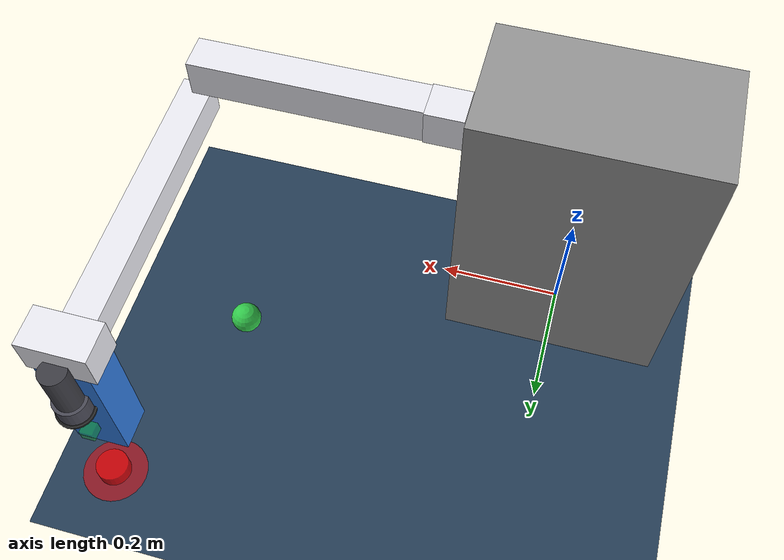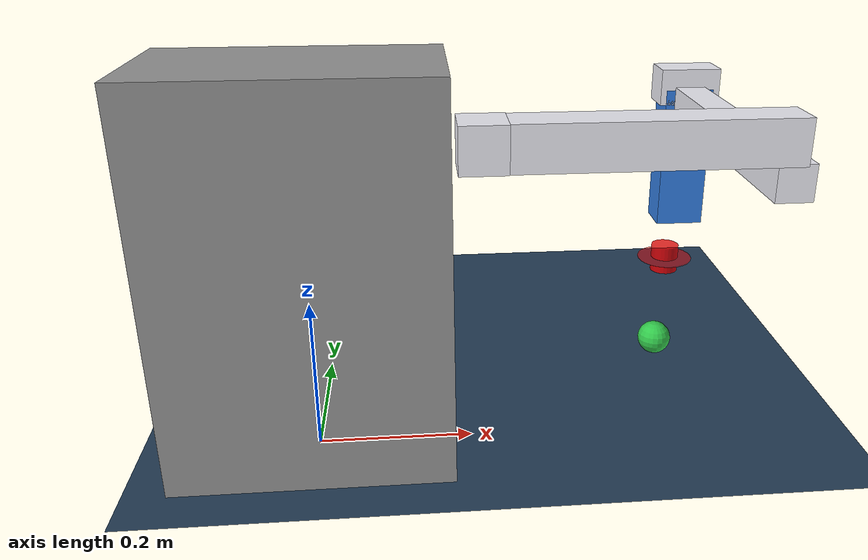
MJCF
<mujoco model="pick_and_place_mocap">
    <compiler angle="radian" autolimits="true" />

    <option integrator="Euler" noslip_iterations="3" timestep="0.002" cone="pyramidal">
        <flag multiccd="enable" warmstart="enable" />
    </option>

    <include file="single_side_arm_mocap.xml" />

    <statistic center="0.3 0 0.4" extent="1.5" />

    <visual>
        <headlight diffuse="0.6 0.6 0.6" ambient="0.3 0.3 0.3" specular="0 0 0" />
        <rgba haze="0.15 0.25 0.35 1" />
        <global azimuth="120" elevation="-20" />
    </visual>

    <asset>
        <texture type="skybox" builtin="gradient" rgb1="0.3 0.5 0.7" rgb2="0 0 0" width="512"
            height="3072" />
        <texture type="2d" name="groundplane" builtin="checker" mark="edge" rgb1="0.2 0.3 0.4"
            rgb2="0.1 0.2 0.3" markrgb="0.8 0.8 0.8" width="300" height="300" />
        <material name="groundplane" texture="groundplane" texuniform="true" texrepeat="5 5"
            reflectance="0.2" />
    </asset>

    <worldbody>
        <light pos="0 0 1.5" dir="0 0 -1" directional="true" />
        <camera name="watching" pos="1.2 -1.0 1.2" xyaxes="0.644 0.765 0.000 -0.250 0.210 0.945" />
        <camera name="front_view" pos="0.8 0 0.6" xyaxes="0 1 0 0 0 1" />
        <camera name="side_view" pos="0 -1.0 0.6" xyaxes="1 0 0 0 0 1" />

        <geom name="floor" pos="0 0 0" size="0 0 0.05" type="plane" material="groundplane" />

        <!-- Target zone -->
        <body name="target_zone" pos="0.6032 0.5114 0.025">
            <site name="target" pos="0 0 0" size="0.025 0.025 0.001" rgba="1 0 0 0.8"
                type="cylinder" />
            <geom name="target_platform" type="cylinder" size="0.05 0.001" pos="0 0 0"
                rgba="1 0 0 0.5" contype="0" conaffinity="0" />
        </body>

        <!-- Object to pick -->
        <body name="obj" pos="0.5 0.2 0.025">
            <joint type="free" damping="0.5" name="obj_joint" />
            <geom name="obj_geom" mass="0.08" type="sphere" size="0.025" rgba="0.2 0.8 0.3 1"
                friction="2.0 0.8 0.01" condim="6" solref="0.01 1.0" solimp="0.95 0.99 0.001" />
            <site name="obj_site" pos="0 0 0" size="0.015" type="sphere" rgba="1 1 0 0.5" />
        </body>

    </worldbody>

    <!-- Additional sensors for pick and place task -->
    <sensor>
        <!-- Object position and orientation -->
        <framepos name="object_pos" objtype="site" objname="obj_site" />
        <framequat name="object_quat" objtype="site" objname="obj_site" />

        <!-- Target position -->
        <framepos name="target_position" objtype="site" objname="target" />

        <!-- Distance between end effector and object -->
        <subtreecom name="object_com" body="obj" />
    </sensor>

    <!-- Equality constraints for suction gripper -->
    <equality>
        <weld name="suction_weld" body1="suction_cup" body2="obj" solref="0.02 1"
            solimp="0.9 0.95 0.001" active="false" />
    </equality>

</mujoco>

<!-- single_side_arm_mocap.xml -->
<mujoco model="single_side_arm_mocap">
    <compiler angle="radian" autolimits="true" />

    <option timestep="0.002" integrator="RK4" />

    <default>
        <joint damping="0.5" armature="0.1" />
        <geom contype="1" conaffinity="1" friction="1 0.5 0.005" />
    </default>

    <asset>
        <material name="white" rgba="0.95 0.95 0.98 1" />
        <material name="gray" rgba="0.6 0.6 0.6 1" />
        <material name="dark" rgba="0.25 0.25 0.28 1" />
        <material name="blue" rgba="0.2 0.5 0.9 1" />
        <material name="rubber" rgba="0.1 0.1 0.1 0.9" />
    </asset>

    <worldbody>
        <!-- Base/Trunk (fixed) -->
        <body name="trunk" pos="0 0 0">
            <geom name="trunk_geom" size="0.175 0.1 0.25" pos="0 0 0.25" type="box" material="gray" />
            <geom name="stub_geom" size="0.03 0.03 0.03" pos="0.215 0 0.4" type="box"
                material="white" />

            <!-- Link 1 (rotates around Z-axis) -->
            <body name="link1_x" pos="0.245 0 0.4">
                <inertial pos="0.1791 0 0" mass="1.2" diaginertia="0.0131907 0.0131332 0.0006625" />
                <joint name="joint1" type="hinge" pos="0 0 0" axis="0 0 1" range="-1.5708 1.5708"
                    damping="1.0" />
                <geom name="link1_geom" size="0.1791 0.0275 0.03" pos="0.1791 0 0" type="box"
                    material="white" />

                <!-- Link 2 (rotates around Z-axis) -->
                <body name="link2_y" pos="0.3582 0 -0.06">
                    <inertial pos="0 0.2357 0" mass="1.5"
                        diaginertia="0.028089745 0.028089745 0.000625" />
                    <joint name="joint2" type="hinge" pos="0 0 0" axis="0 0 1"
                        range="-1.5708 1.5708"
                        damping="1.0" />
                    <geom name="link2_geom" size="0.025 0.2357 0.025" pos="0 0.2357 0" type="box"
                        material="white" />

                    <!-- Rail frame (fixed) -->
                    <geom name="rail_frame_geom" size="0.04 0.03 0.12" pos="0 0.4714 -0.1"
                        type="box"
                        material="blue" />

                    <!-- Rail slider (prismatic joint) -->
                    <body name="rail_slider" pos="0 0.4714 0.025">
                        <inertial pos="0 0 0" mass="0.9" diaginertia="0.00054 0.00102 0.00102" />
                        <joint name="joint3_slide" type="slide" pos="0 0 0" axis="0 0 -1"
                            range="-0.025 0.215"
                            damping="5.0" />
                        <geom name="slider_geom" size="0.05 0.03 0.03" type="box" material="white" />

                        <!-- Spindle (fixed) -->
                        <body name="spindle_link" pos="0 0.04 0">
                            <inertial pos="0 0 -0.04" mass="0.4"
                                diaginertia="0.000253333 0.000253333 0.00008" />
                            <geom name="spindle_geom" size="0.02 0.04" pos="0 0 -0.04"
                                type="cylinder"
                                material="dark" />

                            <!-- 吸盘部分 -->
                            <body name="suction_cup" pos="0 0 -0.08">
                                <inertial pos="0 0 -0.02" mass="0.1"
                                    diaginertia="0.0000358333 0.0000358333 0.000045" />

                                <!-- 1. 吸盘主体 - 金属外壳 -->
                                <geom name="suction_body" type="cylinder"
                                    size="0.025 0.015"
                                    pos="0 0 -0.015"
                                    rgba="0.3 0.3 0.35 1"
                                    mass="0.05"
                                    friction="1.0 0.5 0.005" />

                                <!-- 2. 吸盘橡胶圈 - 接触面 -->
                                <geom name="suction_rim" type="cylinder"
                                    size="0.028 0.003"
                                    pos="0 0 -0.033"
                                    material="rubber"
                                    mass="0.02"
                                    friction="4.0 1.0 0.01"
                                    condim="6"
                                    solref="0.01 1.0"
                                    solimp="0.95 0.99 0.001"
                                    priority="1" />

                                <!-- 3. 吸盘中心吸附点 -->
                                <site name="suction_center"
                                    pos="0 0 -0.036"
                                    size="0.003"
                                    type="sphere"
                                    rgba="1 0 0 0.6" />

                                <!-- 4. 末端执行器标记 - 用于mocap控制 -->
                                <site name="ee_center_site"
                                    pos="0 0 -0.036"
                                    size="0.008"
                                    type="sphere"
                                    rgba="0 1 0 0.5" />
                            </body>
                        </body>
                    </body>
                </body>
            </body>
        </body>

        <!-- Mocap body for end-effector control -->
        <body name="arm_mocap" mocap="true" pos="0.6032 0.5114 0.18">
            <geom name="mocap_geom" type="box" size="0.01 0.01 0.01" rgba="0 1 0 0.3" contype="0"
                conaffinity="0" />
        </body>

    </worldbody>

    <actuator>
        <!-- Position servos for the joints -->
        <position name="actuator_joint1" joint="joint1" kp="100" ctrlrange="-1.5708 1.5708"
            forcerange="-60 60" />
        <position name="actuator_joint2" joint="joint2" kp="100" ctrlrange="-1.5708 1.5708"
            forcerange="-60 60" />
        <position name="actuator_joint3" joint="joint3_slide" kp="500" ctrlrange="-0.025 0.215"
            forcerange="-400 400" />
    </actuator>

    <equality>
        <!-- Weld constraint to connect mocap body to end-effector -->
        <weld name="mocap_weld" body1="arm_mocap" body2="suction_cup" solref="0.02 1"
            solimp="0.9 0.95 0.001" active="true" />
    </equality>

    <sensor>
        <!-- Joint position sensors -->
        <jointpos name="joint1_pos" joint="joint1" />
        <jointpos name="joint2_pos" joint="joint2" />
        <jointpos name="joint3_pos" joint="joint3_slide" />

        <!-- Joint velocity sensors -->
        <jointvel name="joint1_vel" joint="joint1" />
        <jointvel name="joint2_vel" joint="joint2" />
        <jointvel name="joint3_vel" joint="joint3_slide" />

        <!-- End effector position sensor -->
        <framepos name="ee_pos" objtype="site" objname="ee_center_site" />

        <!-- Suction center position sensor -->
        <framepos name="suction_center_pos" objtype="site" objname="suction_center" />
    </sensor>

</mujoco>
